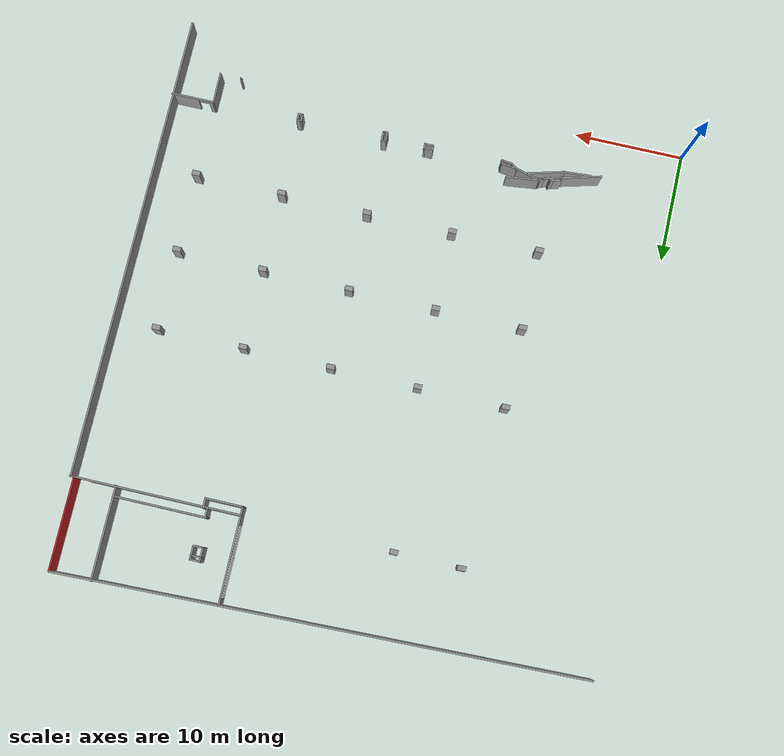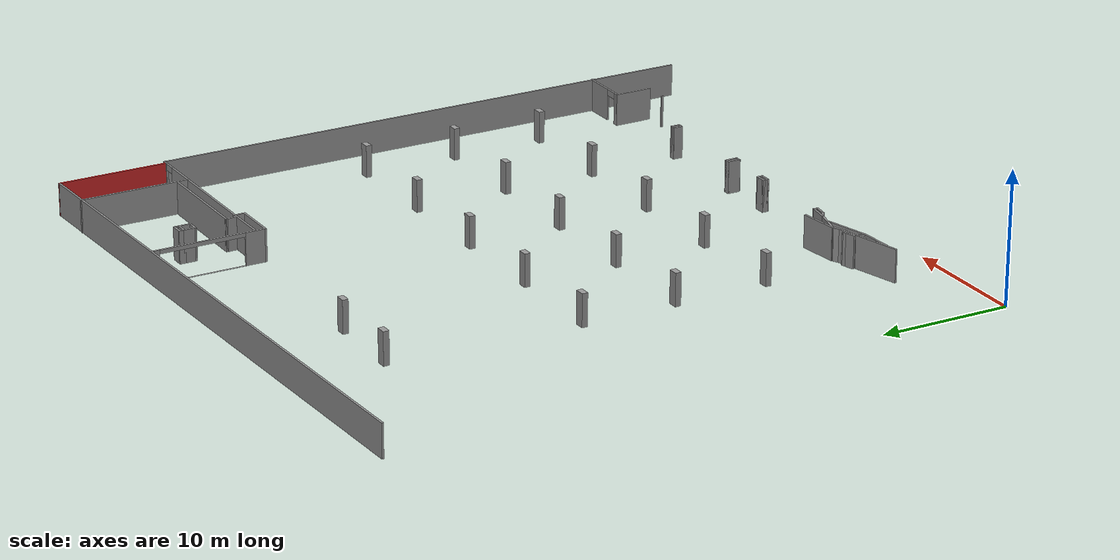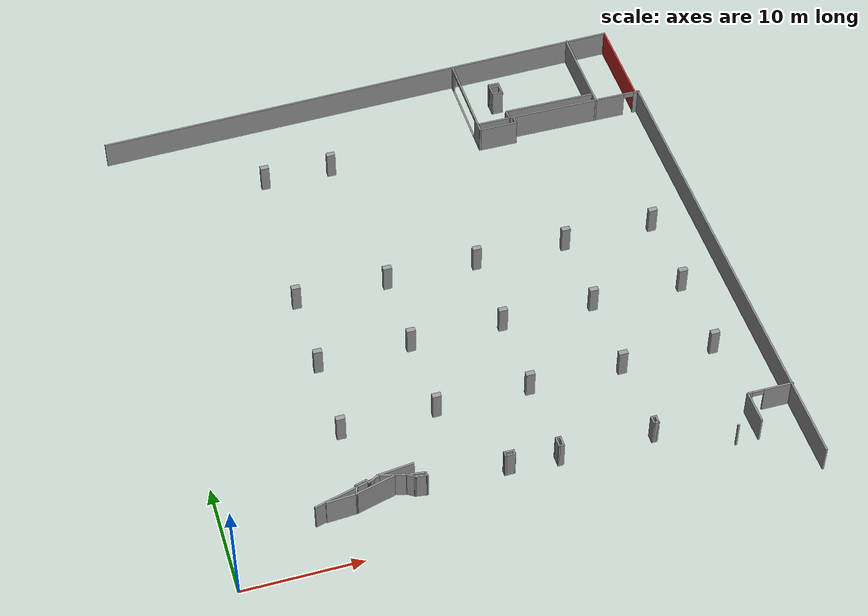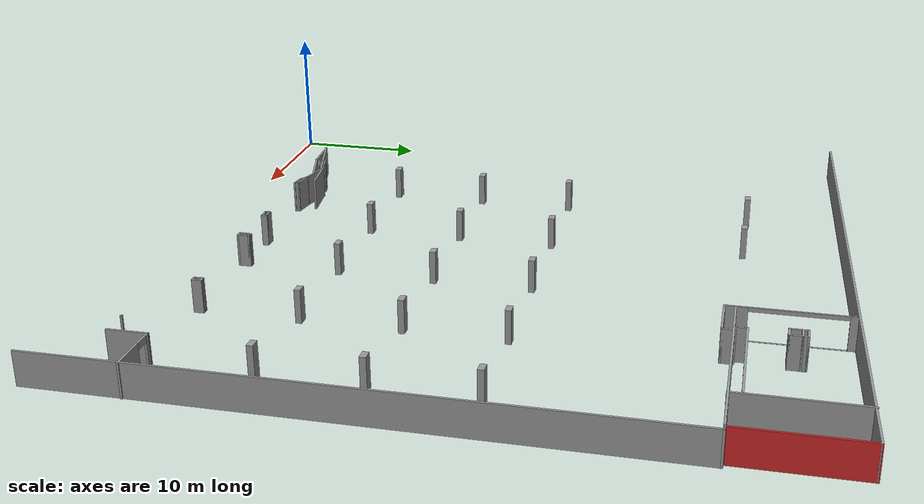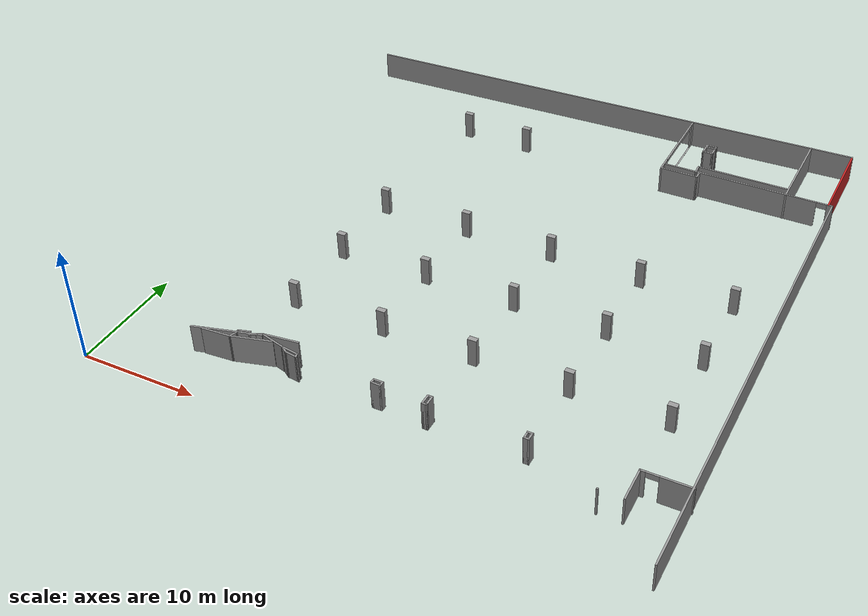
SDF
<sdf version="1.6">
 <model name="car_parking_underground_big_1">
  <pose>-9.36123 -7.37411 0 0 -0 0</pose>
  <link name="Wall_10">
   <collision name="Wall_10_Collision">
    <geometry><box><size>47.7736 0.15 2.5</size></box></geometry>
    <pose>0 0 1.25 0 -0 0</pose>
   </collision>
   <visual name="Wall_10_Visual">
    <pose>0 0 1.25 0 -0 0</pose>
    <geometry><box><size>47.7736 0.15 2.5</size></box></geometry>
    <material>
     <script><uri>file://media/materials/scripts/gazebo.material</uri><name>Gazebo/Grey</name></script>
     <ambient>1 1 1 1</ambient>
    </material>
    <meta><layer>0</layer></meta>
   </visual>
   <pose>32.3321 56.3053 0 0 -0 0.031502</pose>
  </link>
  <link name="Wall_119">
   <pose>54.6311 12.6385 0 0 -0 3.14159</pose>
   <visual name="Wall_119_Visual_0">
    <pose>-0.72715 0 1.25 0 -0 0</pose>
    <geometry><box><size>2.5457 0.15 2.5</size></box></geometry>
    <material>
     <script><uri>file://media/materials/scripts/gazebo.material</uri><name>Gazebo/Grey</name></script>
     <ambient>1 1 1 1</ambient>
    </material>
    <meta><layer>0</layer></meta>
   </visual>
   <collision name="Wall_119_Collision_0">
    <geometry><box><size>2.5457 0.15 2.5</size></box></geometry>
    <pose>-0.72715 0 1.25 0 -0 0</pose>
   </collision>
   <visual name="Wall_119_Visual_1">
    <pose>1.77285 0 1.25 0 -0 0</pose>
    <geometry><box><size>0.4543 0.15 2.5</size></box></geometry>
    <material>
     <script><uri>file://media/materials/scripts/gazebo.material</uri><name>Gazebo/Grey</name></script>
     <ambient>1 1 1 1</ambient>
    </material>
    <meta><layer>0</layer></meta>
   </visual>
   <collision name="Wall_119_Collision_1">
    <geometry><box><size>0.4543 0.15 2.5</size></box></geometry>
    <pose>1.77285 0 1.25 0 -0 0</pose>
   </collision>
   <visual name="Wall_119_Visual_2">
    <pose>1.0457 0 2.25 0 -0 0</pose>
    <geometry><box><size>1 0.15 0.5</size></box></geometry>
    <material>
     <script><uri>file://media/materials/scripts/gazebo.material</uri><name>Gazebo/Grey</name></script>
     <ambient>1 1 1 1</ambient>
    </material>
    <meta><layer>0</layer></meta>
   </visual>
   <collision name="Wall_119_Collision_2">
    <geometry><box><size>1 0.15 0.5</size></box></geometry>
    <pose>1.0457 0 2.25 0 -0 0</pose>
   </collision>
  </link>
  <link name="Wall_12">
   <collision name="Wall_12_Collision">
    <geometry><box><size>8.5 0.15 2.5</size></box></geometry>
    <pose>0 0 1.25 0 -0 0</pose>
   </collision>
   <visual name="Wall_12_Visual">
    <pose>0 0 1.25 0 -0 0</pose>
    <geometry><box><size>8.5 0.15 2.5</size></box></geometry>
    <material>
     <script><uri>file://media/materials/scripts/gazebo.material</uri><name>Gazebo/Red</name></script>
     <ambient>1 1 1 1</ambient>
    </material>
    <meta><layer>0</layer></meta>
   </visual>
   <pose>56.1321 52.8803 0 0 -0 -1.5708</pose>
  </link>
  <link name="Wall_120">
   <collision name="Wall_120_Collision">
    <geometry><box><size>2.9616 0.15 2.5</size></box></geometry>
    <pose>0 0 1.25 0 -0 0</pose>
   </collision>
   <visual name="Wall_120_Visual">
    <pose>0 0 1.25 0 -0 0</pose>
    <geometry><box><size>2.9616 0.15 2.5</size></box></geometry>
    <material>
     <script><uri>file://media/materials/scripts/gazebo.material</uri><name>Gazebo/Grey</name></script>
     <ambient>1 1 1 1</ambient>
    </material>
    <meta><layer>0</layer></meta>
   </visual>
   <pose>52.7061 11.2327 0 0 -0 -1.56139</pose>
  </link>
  <link name="Wall_122">
   <pose>50.3071 48.6746 0 0 -0 3.14159</pose>
   <visual name="Wall_122_Visual_0">
    <pose>-5.96002 0 1.25 0 -0 0</pose>
    <geometry><box><size>0.579961 0.15 2.5</size></box></geometry>
    <material>
     <script><uri>file://media/materials/scripts/gazebo.material</uri><name>Gazebo/Grey</name></script>
     <ambient>1 1 1 1</ambient>
    </material>
    <meta><layer>0</layer></meta>
   </visual>
   <collision name="Wall_122_Collision_0">
    <geometry><box><size>0.579961 0.15 2.5</size></box></geometry>
    <pose>-5.96002 0 1.25 0 -0 0</pose>
   </collision>
   <visual name="Wall_122_Visual_1">
    <pose>0.73998 0 1.25 0 -0 0</pose>
    <geometry><box><size>11.02 0.15 2.5</size></box></geometry>
    <material>
     <script><uri>file://media/materials/scripts/gazebo.material</uri><name>Gazebo/Grey</name></script>
     <ambient>1 1 1 1</ambient>
    </material>
    <meta><layer>0</layer></meta>
   </visual>
   <collision name="Wall_122_Collision_1">
    <geometry><box><size>11.02 0.15 2.5</size></box></geometry>
    <pose>0.73998 0 1.25 0 -0 0</pose>
   </collision>
   <visual name="Wall_122_Visual_2">
    <pose>-5.22004 0 2.25 0 -0 0</pose>
    <geometry><box><size>0.9 0.15 0.5</size></box></geometry>
    <material>
     <script><uri>file://media/materials/scripts/gazebo.material</uri><name>Gazebo/Grey</name></script>
     <ambient>1 1 1 1</ambient>
    </material>
    <meta><layer>0</layer></meta>
   </visual>
   <collision name="Wall_122_Collision_2">
    <geometry><box><size>0.9 0.15 0.5</size></box></geometry>
    <pose>-5.22004 0 2.25 0 -0 0</pose>
   </collision>
  </link>
  <link name="Wall_13">
   <collision name="Wall_13_Collision">
    <geometry><box><size>0.470715 0.15 2.5</size></box></geometry>
    <pose>0 0 1.25 0 -0 0</pose>
   </collision>
   <visual name="Wall_13_Visual">
    <pose>0 0 1.25 0 -0 0</pose>
    <geometry><box><size>0.470715 0.15 2.5</size></box></geometry>
    <material>
     <script><uri>file://media/materials/scripts/gazebo.material</uri><name>Gazebo/Grey</name></script>
     <ambient>1 1 1 1</ambient>
    </material>
    <meta><layer>0</layer></meta>
   </visual>
   <pose>56.2917 48.6899 0 0 -0 -0.096071</pose>
  </link>
  <link name="Wall_14">
   <collision name="Wall_14_Collision">
    <geometry><box><size>43.2195 0.15 2.5</size></box></geometry>
    <pose>0 0 1.25 0 -0 0</pose>
   </collision>
   <visual name="Wall_14_Visual">
    <pose>0 0 1.25 0 -0 0</pose>
    <geometry><box><size>43.2195 0.15 2.5</size></box></geometry>
    <material>
     <script><uri>file://media/materials/scripts/gazebo.material</uri><name>Gazebo/Grey</name></script>
     <ambient>1 1 1 1</ambient>
    </material>
    <meta><layer>0</layer></meta>
   </visual>
   <pose>56.4667 27.1399 0 0 -0 -1.57008</pose>
  </link>
  <link name="Wall_225">
   <collision name="Wall_225_Collision">
    <geometry><box><size>2.58227 0.15 2.5</size></box></geometry>
    <pose>0 0 1.25 0 -0 0</pose>
   </collision>
   <visual name="Wall_225_Visual">
    <pose>0 0 1.25 0 -0 0</pose>
    <geometry><box><size>2.58227 0.15 2.5</size></box></geometry>
    <material>
     <script><uri>file://media/materials/scripts/gazebo.material</uri><name>Gazebo/Grey</name></script>
     <ambient>1 1 1 1</ambient>
    </material>
    <meta><layer>0</layer></meta>
   </visual>
   <pose>18.6857 11.8599 0 0 -0 0.069276</pose>
  </link>
  <link name="Wall_226">
   <collision name="Wall_226_Collision">
    <geometry><box><size>0.710661 0.15 2.5</size></box></geometry>
    <pose>0 0 1.25 0 -0 0</pose>
   </collision>
   <visual name="Wall_226_Visual">
    <pose>0 0 1.25 0 -0 0</pose>
    <geometry><box><size>0.710661 0.15 2.5</size></box></geometry>
    <material>
     <script><uri>file://media/materials/scripts/gazebo.material</uri><name>Gazebo/Grey</name></script>
     <ambient>1 1 1 1</ambient>
    </material>
    <meta><layer>0</layer></meta>
   </visual>
   <pose>19.9897 12.2093 0 0 -0 1.24101</pose>
  </link>
  <link name="Wall_227">
   <collision name="Wall_227_Collision">
    <geometry><box><size>0.25 0.15 2.5</size></box></geometry>
    <pose>0 0 1.25 0 -0 0</pose>
   </collision>
   <visual name="Wall_227_Visual">
    <pose>0 0 1.25 0 -0 0</pose>
    <geometry><box><size>0.25 0.15 2.5</size></box></geometry>
    <material>
     <script><uri>file://media/materials/scripts/gazebo.material</uri><name>Gazebo/Grey</name></script>
     <ambient>1 1 1 1</ambient>
    </material>
    <meta><layer>0</layer></meta>
   </visual>
   <pose>20.0935 12.5228 0 0 -0 1.309</pose>
  </link>
  <link name="Wall_228">
   <collision name="Wall_228_Collision">
    <geometry><box><size>0.25 0.15 2.5</size></box></geometry>
    <pose>0 0 1.25 0 -0 0</pose>
   </collision>
   <visual name="Wall_228_Visual">
    <pose>0 0 1.25 0 -0 0</pose>
    <geometry><box><size>0.25 0.15 2.5</size></box></geometry>
    <material>
     <script><uri>file://media/materials/scripts/gazebo.material</uri><name>Gazebo/Grey</name></script>
     <ambient>1 1 1 1</ambient>
    </material>
    <meta><layer>0</layer></meta>
   </visual>
   <pose>20.0935 12.6194 0 0 -0 1.8326</pose>
  </link>
  <link name="Wall_229">
   <collision name="Wall_229_Collision">
    <geometry><box><size>0.25 0.15 2.5</size></box></geometry>
    <pose>0 0 1.25 0 -0 0</pose>
   </collision>
   <visual name="Wall_229_Visual">
    <pose>0 0 1.25 0 -0 0</pose>
    <geometry><box><size>0.25 0.15 2.5</size></box></geometry>
    <material>
     <script><uri>file://media/materials/scripts/gazebo.material</uri><name>Gazebo/Grey</name></script>
     <ambient>1 1 1 1</ambient>
    </material>
    <meta><layer>0</layer></meta>
   </visual>
   <pose>20.0676 12.716 0 0 -0 1.8326</pose>
  </link>
  <link name="Wall_230">
   <collision name="Wall_230_Collision">
    <geometry><box><size>0.75 0.15 2.5</size></box></geometry>
    <pose>0 0 1.25 0 -0 0</pose>
   </collision>
   <visual name="Wall_230_Visual">
    <pose>0 0 1.25 0 -0 0</pose>
    <geometry><box><size>0.75 0.15 2.5</size></box></geometry>
    <material>
     <script><uri>file://media/materials/scripts/gazebo.material</uri><name>Gazebo/Grey</name></script>
     <ambient>1 1 1 1</ambient>
    </material>
    <meta><layer>0</layer></meta>
   </visual>
   <pose>20.3444 12.842 0 0 -0 0.261799</pose>
  </link>
  <link name="Wall_231">
   <collision name="Wall_231_Collision">
    <geometry><box><size>0.5 0.15 2.5</size></box></geometry>
    <pose>0 0 1.25 0 -0 0</pose>
   </collision>
   <visual name="Wall_231_Visual">
    <pose>0 0 1.25 0 -0 0</pose>
    <geometry><box><size>0.5 0.15 2.5</size></box></geometry>
    <material>
     <script><uri>file://media/materials/scripts/gazebo.material</uri><name>Gazebo/Grey</name></script>
     <ambient>1 1 1 1</ambient>
    </material>
    <meta><layer>0</layer></meta>
   </visual>
   <pose>20.8032 12.9649 0 0 -0 0.261799</pose>
  </link>
  <link name="Wall_232">
   <collision name="Wall_232_Collision">
    <geometry><box><size>0.5 0.15 2.5</size></box></geometry>
    <pose>0 0 1.25 0 -0 0</pose>
   </collision>
   <visual name="Wall_232_Visual">
    <pose>0 0 1.25 0 -0 0</pose>
    <geometry><box><size>0.5 0.15 2.5</size></box></geometry>
    <material>
     <script><uri>file://media/materials/scripts/gazebo.material</uri><name>Gazebo/Grey</name></script>
     <ambient>1 1 1 1</ambient>
    </material>
    <meta><layer>0</layer></meta>
   </visual>
   <pose>21.0598 12.8586 0 0 -0 -1.0472</pose>
  </link>
  <link name="Wall_233">
   <collision name="Wall_233_Collision">
    <geometry><box><size>1.11288 0.15 2.5</size></box></geometry>
    <pose>0 0 1.25 0 -0 0</pose>
   </collision>
   <visual name="Wall_233_Visual">
    <pose>0 0 1.25 0 -0 0</pose>
    <geometry><box><size>1.11288 0.15 2.5</size></box></geometry>
    <material>
     <script><uri>file://media/materials/scripts/gazebo.material</uri><name>Gazebo/Grey</name></script>
     <ambient>1 1 1 1</ambient>
    </material>
    <meta><layer>0</layer></meta>
   </visual>
   <pose>21.5578 12.9586 0 0 -0 0.549683</pose>
  </link>
  <link name="Wall_234">
   <collision name="Wall_234_Collision">
    <geometry><box><size>2.40199 0.15 2.5</size></box></geometry>
    <pose>0 0 1.25 0 -0 0</pose>
   </collision>
   <visual name="Wall_234_Visual">
    <pose>0 0 1.25 0 -0 0</pose>
    <geometry><box><size>2.40199 0.15 2.5</size></box></geometry>
    <material>
     <script><uri>file://media/materials/scripts/gazebo.material</uri><name>Gazebo/Grey</name></script>
     <ambient>1 1 1 1</ambient>
    </material>
    <meta><layer>0</layer></meta>
   </visual>
   <pose>23.0573 12.9238 0 0 -0 -0.257093</pose>
  </link>
  <link name="Wall_235">
   <collision name="Wall_235_Collision">
    <geometry><box><size>1.64004 0.15 2.5</size></box></geometry>
    <pose>0 0 1.25 0 -0 0</pose>
   </collision>
   <visual name="Wall_235_Visual">
    <pose>0 0 1.25 0 -0 0</pose>
    <geometry><box><size>1.64004 0.15 2.5</size></box></geometry>
    <material>
     <script><uri>file://media/materials/scripts/gazebo.material</uri><name>Gazebo/Grey</name></script>
     <ambient>1 1 1 1</ambient>
    </material>
    <meta><layer>0</layer></meta>
   </visual>
   <pose>24.8831 12.5269 0 0 -0 -0.149037</pose>
  </link>
  <link name="Wall_236">
   <collision name="Wall_236_Collision">
    <geometry><box><size>0.44205 0.15 2.5</size></box></geometry>
    <pose>0 0 1.25 0 -0 0</pose>
   </collision>
   <visual name="Wall_236_Visual">
    <pose>0 0 1.25 0 -0 0</pose>
    <geometry><box><size>0.44205 0.15 2.5</size></box></geometry>
    <material>
     <script><uri>file://media/materials/scripts/gazebo.material</uri><name>Gazebo/Grey</name></script>
     <ambient>1 1 1 1</ambient>
    </material>
    <meta><layer>0</layer></meta>
   </visual>
   <pose>25.6247 12.2724 0 0 -0 -1.39874</pose>
  </link>
  <link name="Wall_237">
   <collision name="Wall_237_Collision">
    <geometry><box><size>1.12043 0.15 2.5</size></box></geometry>
    <pose>0 0 1.25 0 -0 0</pose>
   </collision>
   <visual name="Wall_237_Visual">
    <pose>0 0 1.25 0 -0 0</pose>
    <geometry><box><size>1.12043 0.15 2.5</size></box></geometry>
    <material>
     <script><uri>file://media/materials/scripts/gazebo.material</uri><name>Gazebo/Grey</name></script>
     <ambient>1 1 1 1</ambient>
    </material>
    <meta><layer>0</layer></meta>
   </visual>
   <pose>25.189 12.1938 0 0 -0 3.00654</pose>
  </link>
  <link name="Wall_238">
   <collision name="Wall_238_Collision">
    <geometry><box><size>0.827415 0.15 2.5</size></box></geometry>
    <pose>0 0 1.25 0 -0 0</pose>
   </collision>
   <visual name="Wall_238_Visual">
    <pose>0 0 1.25 0 -0 0</pose>
    <geometry><box><size>0.827415 0.15 2.5</size></box></geometry>
    <material>
     <script><uri>file://media/materials/scripts/gazebo.material</uri><name>Gazebo/Grey</name></script>
     <ambient>1 1 1 1</ambient>
    </material>
    <meta><layer>0</layer></meta>
   </visual>
   <pose>24.4675 12.4282 0 0 -0 2.54904</pose>
  </link>
  <link name="Wall_280">
   <collision name="Wall_280_Collision">
    <geometry><box><size>0.865 0.15 2.5</size></box></geometry>
    <pose>0 0 1.25 0 -0 0</pose>
   </collision>
   <visual name="Wall_280_Visual">
    <pose>0 0 1.25 0 -0 0</pose>
    <geometry><box><size>0.865 0.15 2.5</size></box></geometry>
    <material>
     <script><uri>file://media/materials/scripts/gazebo.material</uri><name>Gazebo/Grey</name></script>
     <ambient>1 1 1 1</ambient>
    </material>
    <meta><layer>0</layer></meta>
   </visual>
   <pose>32.4625 12.5347 0 0 -0 0</pose>
  </link>
  <link name="Wall_281">
   <collision name="Wall_281_Collision">
    <geometry><box><size>0.5 0.15 2.5</size></box></geometry>
    <pose>0 0 1.25 0 -0 0</pose>
   </collision>
   <visual name="Wall_281_Visual">
    <pose>0 0 1.25 0 -0 0</pose>
    <geometry><box><size>0.5 0.15 2.5</size></box></geometry>
    <material>
     <script><uri>file://media/materials/scripts/gazebo.material</uri><name>Gazebo/Grey</name></script>
     <ambient>1 1 1 1</ambient>
    </material>
    <meta><layer>0</layer></meta>
   </visual>
   <pose>32.843 12.3597 0 0 -0 -1.5708</pose>
  </link>
  <link name="Wall_282">
   <collision name="Wall_282_Collision">
    <geometry><box><size>0.865 0.15 2.5</size></box></geometry>
    <pose>0 0 1.25 0 -0 0</pose>
   </collision>
   <visual name="Wall_282_Visual">
    <pose>0 0 1.25 0 -0 0</pose>
    <geometry><box><size>0.865 0.15 2.5</size></box></geometry>
    <material>
     <script><uri>file://media/materials/scripts/gazebo.material</uri><name>Gazebo/Grey</name></script>
     <ambient>1 1 1 1</ambient>
    </material>
    <meta><layer>0</layer></meta>
   </visual>
   <pose>32.4625 12.1847 0 0 -0 3.14159</pose>
  </link>
  <link name="Wall_283">
   <collision name="Wall_283_Collision">
    <geometry><box><size>0.5 0.15 2.5</size></box></geometry>
    <pose>0 0 1.25 0 -0 0</pose>
   </collision>
   <visual name="Wall_283_Visual">
    <pose>0 0 1.25 0 -0 0</pose>
    <geometry><box><size>0.5 0.15 2.5</size></box></geometry>
    <material>
     <script><uri>file://media/materials/scripts/gazebo.material</uri><name>Gazebo/Grey</name></script>
     <ambient>1 1 1 1</ambient>
    </material>
    <meta><layer>0</layer></meta>
   </visual>
   <pose>32.105 12.3597 0 0 -0 1.5708</pose>
  </link>
  <link name="Wall_290">
   <collision name="Wall_290_Collision">
    <geometry><box><size>0.5 0.15 2.5</size></box></geometry>
    <pose>0 0 1.25 0 -0 0</pose>
   </collision>
   <visual name="Wall_290_Visual">
    <pose>0 0 1.25 0 -0 0</pose>
    <geometry><box><size>0.5 0.15 2.5</size></box></geometry>
    <material>
     <script><uri>file://media/materials/scripts/gazebo.material</uri><name>Gazebo/Grey</name></script>
     <ambient>1 1 1 1</ambient>
    </material>
    <meta><layer>0</layer></meta>
   </visual>
   <pose>36.6277 12.7413 0 0 -0 0</pose>
  </link>
  <link name="Wall_291">
   <collision name="Wall_291_Collision">
    <geometry><box><size>1 0.15 2.5</size></box></geometry>
    <pose>0 0 1.25 0 -0 0</pose>
   </collision>
   <visual name="Wall_291_Visual">
    <pose>0 0 1.25 0 -0 0</pose>
    <geometry><box><size>1 0.15 2.5</size></box></geometry>
    <material>
     <script><uri>file://media/materials/scripts/gazebo.material</uri><name>Gazebo/Grey</name></script>
     <ambient>1 1 1 1</ambient>
    </material>
    <meta><layer>0</layer></meta>
   </visual>
   <pose>36.8027 12.3163 0 0 -0 -1.5708</pose>
  </link>
  <link name="Wall_292">
   <collision name="Wall_292_Collision">
    <geometry><box><size>0.5 0.15 2.5</size></box></geometry>
    <pose>0 0 1.25 0 -0 0</pose>
   </collision>
   <visual name="Wall_292_Visual">
    <pose>0 0 1.25 0 -0 0</pose>
    <geometry><box><size>0.5 0.15 2.5</size></box></geometry>
    <material>
     <script><uri>file://media/materials/scripts/gazebo.material</uri><name>Gazebo/Grey</name></script>
     <ambient>1 1 1 1</ambient>
    </material>
    <meta><layer>0</layer></meta>
   </visual>
   <pose>36.6277 11.8913 0 0 -0 3.14159</pose>
  </link>
  <link name="Wall_293">
   <collision name="Wall_293_Collision">
    <geometry><box><size>1 0.15 2.5</size></box></geometry>
    <pose>0 0 1.25 0 -0 0</pose>
   </collision>
   <visual name="Wall_293_Visual">
    <pose>0 0 1.25 0 -0 0</pose>
    <geometry><box><size>1 0.15 2.5</size></box></geometry>
    <material>
     <script><uri>file://media/materials/scripts/gazebo.material</uri><name>Gazebo/Grey</name></script>
     <ambient>1 1 1 1</ambient>
    </material>
    <meta><layer>0</layer></meta>
   </visual>
   <pose>36.4527 12.3163 0 0 -0 1.5708</pose>
  </link>
  <link name="Wall_300">
   <collision name="Wall_300_Collision">
    <geometry><box><size>0.48251 0.15 2.5</size></box></geometry>
    <pose>0 0 1.25 0 -0 0</pose>
   </collision>
   <visual name="Wall_300_Visual">
    <pose>0 0 1.25 0 -0 0</pose>
    <geometry><box><size>0.48251 0.15 2.5</size></box></geometry>
    <material>
     <script><uri>file://media/materials/scripts/gazebo.material</uri><name>Gazebo/Grey</name></script>
     <ambient>1 1 1 1</ambient>
    </material>
    <meta><layer>0</layer></meta>
   </visual>
   <pose>44.5888 12.5688 0 0 -0 0</pose>
  </link>
  <link name="Wall_301">
   <collision name="Wall_301_Collision">
    <geometry><box><size>0.75 0.15 2.5</size></box></geometry>
    <pose>0 0 1.25 0 -0 0</pose>
   </collision>
   <visual name="Wall_301_Visual">
    <pose>0 0 1.25 0 -0 0</pose>
    <geometry><box><size>0.75 0.15 2.5</size></box></geometry>
    <material>
     <script><uri>file://media/materials/scripts/gazebo.material</uri><name>Gazebo/Grey</name></script>
     <ambient>1 1 1 1</ambient>
    </material>
    <meta><layer>0</layer></meta>
   </visual>
   <pose>44.7725 12.2688 0 0 -0 -1.5708</pose>
  </link>
  <link name="Wall_302">
   <collision name="Wall_302_Collision">
    <geometry><box><size>0.48251 0.15 2.5</size></box></geometry>
    <pose>0 0 1.25 0 -0 0</pose>
   </collision>
   <visual name="Wall_302_Visual">
    <pose>0 0 1.25 0 -0 0</pose>
    <geometry><box><size>0.48251 0.15 2.5</size></box></geometry>
    <material>
     <script><uri>file://media/materials/scripts/gazebo.material</uri><name>Gazebo/Grey</name></script>
     <ambient>1 1 1 1</ambient>
    </material>
    <meta><layer>0</layer></meta>
   </visual>
   <pose>44.5888 11.9688 0 0 -0 -3.14159</pose>
  </link>
  <link name="Wall_303">
   <collision name="Wall_303_Collision">
    <geometry><box><size>0.75 0.15 2.5</size></box></geometry>
    <pose>0 0 1.25 0 -0 0</pose>
   </collision>
   <visual name="Wall_303_Visual">
    <pose>0 0 1.25 0 -0 0</pose>
    <geometry><box><size>0.75 0.15 2.5</size></box></geometry>
    <material>
     <script><uri>file://media/materials/scripts/gazebo.material</uri><name>Gazebo/Grey</name></script>
     <ambient>1 1 1 1</ambient>
    </material>
    <meta><layer>0</layer></meta>
   </visual>
   <pose>44.4225 12.2688 0 0 -0 1.5708</pose>
  </link>
  <link name="Wall_31">
   <collision name="Wall_31_Collision">
    <geometry><box><size>3.13406 0.15 2.5</size></box></geometry>
    <pose>0 0 1.25 0 -0 0</pose>
   </collision>
   <visual name="Wall_31_Visual">
    <pose>0 0 1.25 0 -0 0</pose>
    <geometry><box><size>3.13406 0.15 2.5</size></box></geometry>
    <material>
     <script><uri>file://media/materials/scripts/gazebo.material</uri><name>Gazebo/Grey</name></script>
     <ambient>1 1 1 1</ambient>
    </material>
    <meta><layer>0</layer></meta>
   </visual>
   <pose>23.4496 13.3891 0 0 -0 -3.02137</pose>
  </link>
  <link name="Wall_313">
   <collision name="Wall_313_Collision">
    <geometry><box><size>0.75 0.45 2.5</size></box></geometry>
    <pose>0 0 1.25 0 -0 0</pose>
   </collision>
   <visual name="Wall_313_Visual">
    <pose>0 0 1.25 0 -0 0</pose>
    <geometry><box><size>0.75 0.45 2.5</size></box></geometry>
    <material>
     <script><uri>file://media/materials/scripts/gazebo.material</uri><name>Gazebo/Grey</name></script>
     <ambient>1 1 1 1</ambient>
    </material>
    <meta><layer>0</layer></meta>
   </visual>
   <pose>52.5538 19.541 0 0 -0 3.14159</pose>
  </link>
  <link name="Wall_318">
   <collision name="Wall_318_Collision">
    <geometry><box><size>0.75 0.45 2.5</size></box></geometry>
    <pose>0 0 1.25 0 -0 0</pose>
   </collision>
   <visual name="Wall_318_Visual">
    <pose>0 0 1.25 0 -0 0</pose>
    <geometry><box><size>0.75 0.45 2.5</size></box></geometry>
    <material>
     <script><uri>file://media/materials/scripts/gazebo.material</uri><name>Gazebo/Grey</name></script>
     <ambient>1 1 1 1</ambient>
    </material>
    <meta><layer>0</layer></meta>
   </visual>
   <pose>52.5108 26.8208 0 0 -0 3.14159</pose>
  </link>
  <link name="Wall_32">
   <collision name="Wall_32_Collision">
    <geometry><box><size>5.75 0.15 2.5</size></box></geometry>
    <pose>0 0 1.25 0 -0 0</pose>
   </collision>
   <visual name="Wall_32_Visual">
    <pose>0 0 1.25 0 -0 0</pose>
    <geometry><box><size>5.75 0.15 2.5</size></box></geometry>
    <material>
     <script><uri>file://media/materials/scripts/gazebo.material</uri><name>Gazebo/Grey</name></script>
     <ambient>1 1 1 1</ambient>
    </material>
    <meta><layer>0</layer></meta>
   </visual>
   <pose>19.2637 12.3439 0 0 -0 -2.87979</pose>
  </link>
  <link name="Wall_321">
   <collision name="Wall_321_Collision">
    <geometry><box><size>0.75 0.45 2.5</size></box></geometry>
    <pose>0 0 1.25 0 -0 0</pose>
   </collision>
   <visual name="Wall_321_Visual">
    <pose>0 0 1.25 0 -0 0</pose>
    <geometry><box><size>0.75 0.45 2.5</size></box></geometry>
    <material>
     <script><uri>file://media/materials/scripts/gazebo.material</uri><name>Gazebo/Grey</name></script>
     <ambient>1 1 1 1</ambient>
    </material>
    <meta><layer>0</layer></meta>
   </visual>
   <pose>52.5087 34.1862 0 0 -0 0</pose>
  </link>
  <link name="Wall_327">
   <collision name="Wall_327_Collision">
    <geometry><box><size>0.75 0.45 2.5</size></box></geometry>
    <pose>0 0 1.25 0 -0 0</pose>
   </collision>
   <visual name="Wall_327_Visual">
    <pose>0 0 1.25 0 -0 0</pose>
    <geometry><box><size>0.75 0.45 2.5</size></box></geometry>
    <material>
     <script><uri>file://media/materials/scripts/gazebo.material</uri><name>Gazebo/Grey</name></script>
     <ambient>1 1 1 1</ambient>
    </material>
    <meta><layer>0</layer></meta>
   </visual>
   <pose>44.5437 19.5939 0 0 -0 0</pose>
  </link>
  <link name="Wall_332">
   <collision name="Wall_332_Collision">
    <geometry><box><size>0.75 0.45 2.5</size></box></geometry>
    <pose>0 0 1.25 0 -0 0</pose>
   </collision>
   <visual name="Wall_332_Visual">
    <pose>0 0 1.25 0 -0 0</pose>
    <geometry><box><size>0.75 0.45 2.5</size></box></geometry>
    <material>
     <script><uri>file://media/materials/scripts/gazebo.material</uri><name>Gazebo/Grey</name></script>
     <ambient>1 1 1 1</ambient>
    </material>
    <meta><layer>0</layer></meta>
   </visual>
   <pose>36.5671 19.6581 0 0 -0 0</pose>
  </link>
  <link name="Wall_337">
   <collision name="Wall_337_Collision">
    <geometry><box><size>0.75 0.45 2.5</size></box></geometry>
    <pose>0 0 1.25 0 -0 0</pose>
   </collision>
   <visual name="Wall_337_Visual">
    <pose>0 0 1.25 0 -0 0</pose>
    <geometry><box><size>0.75 0.45 2.5</size></box></geometry>
    <material>
     <script><uri>file://media/materials/scripts/gazebo.material</uri><name>Gazebo/Grey</name></script>
     <ambient>1 1 1 1</ambient>
    </material>
    <meta><layer>0</layer></meta>
   </visual>
   <pose>36.5553 26.887 0 0 -0 0</pose>
  </link>
  <link name="Wall_342">
   <collision name="Wall_342_Collision">
    <geometry><box><size>0.75 0.45 2.5</size></box></geometry>
    <pose>0 0 1.25 0 -0 0</pose>
   </collision>
   <visual name="Wall_342_Visual">
    <pose>0 0 1.25 0 -0 0</pose>
    <geometry><box><size>0.75 0.45 2.5</size></box></geometry>
    <material>
     <script><uri>file://media/materials/scripts/gazebo.material</uri><name>Gazebo/Grey</name></script>
     <ambient>1 1 1 1</ambient>
    </material>
    <meta><layer>0</layer></meta>
   </visual>
   <pose>44.5437 26.8691 0 0 -0 0</pose>
  </link>
  <link name="Wall_351">
   <collision name="Wall_351_Collision">
    <geometry><box><size>0.75 0.45 2.5</size></box></geometry>
    <pose>0 0 1.25 0 -0 0</pose>
   </collision>
   <visual name="Wall_351_Visual">
    <pose>0 0 1.25 0 -0 0</pose>
    <geometry><box><size>0.75 0.45 2.5</size></box></geometry>
    <material>
     <script><uri>file://media/materials/scripts/gazebo.material</uri><name>Gazebo/Grey</name></script>
     <ambient>1 1 1 1</ambient>
    </material>
    <meta><layer>0</layer></meta>
   </visual>
   <pose>36.5306 34.1781 0 0 -0 0</pose>
  </link>
  <link name="Wall_356">
   <collision name="Wall_356_Collision">
    <geometry><box><size>0.75 0.45 2.5</size></box></geometry>
    <pose>0 0 1.25 0 -0 0</pose>
   </collision>
   <visual name="Wall_356_Visual">
    <pose>0 0 1.25 0 -0 0</pose>
    <geometry><box><size>0.75 0.45 2.5</size></box></geometry>
    <material>
     <script><uri>file://media/materials/scripts/gazebo.material</uri><name>Gazebo/Grey</name></script>
     <ambient>1 1 1 1</ambient>
    </material>
    <meta><layer>0</layer></meta>
   </visual>
   <pose>44.5337 34.1601 0 0 -0 0</pose>
  </link>
  <link name="Wall_361">
   <collision name="Wall_361_Collision">
    <geometry><box><size>0.75 0.45 2.5</size></box></geometry>
    <pose>0 0 1.25 0 -0 0</pose>
   </collision>
   <visual name="Wall_361_Visual">
    <pose>0 0 1.25 0 -0 0</pose>
    <geometry><box><size>0.75 0.45 2.5</size></box></geometry>
    <material>
     <script><uri>file://media/materials/scripts/gazebo.material</uri><name>Gazebo/Grey</name></script>
     <ambient>1 1 1 1</ambient>
    </material>
    <meta><layer>0</layer></meta>
   </visual>
   <pose>20.6157 34.2141 0 0 -0 0</pose>
  </link>
  <link name="Wall_366">
   <collision name="Wall_366_Collision">
    <geometry><box><size>0.75 0.45 2.5</size></box></geometry>
    <pose>0 0 1.25 0 -0 0</pose>
   </collision>
   <visual name="Wall_366_Visual">
    <pose>0 0 1.25 0 -0 0</pose>
    <geometry><box><size>0.75 0.45 2.5</size></box></geometry>
    <material>
     <script><uri>file://media/materials/scripts/gazebo.material</uri><name>Gazebo/Grey</name></script>
     <ambient>1 1 1 1</ambient>
    </material>
    <meta><layer>0</layer></meta>
   </visual>
   <pose>28.5785 34.1773 0 0 -0 0</pose>
  </link>
  <link name="Wall_371">
   <collision name="Wall_371_Collision">
    <geometry><box><size>0.75 0.45 2.5</size></box></geometry>
    <pose>0 0 1.25 0 -0 0</pose>
   </collision>
   <visual name="Wall_371_Visual">
    <pose>0 0 1.25 0 -0 0</pose>
    <geometry><box><size>0.75 0.45 2.5</size></box></geometry>
    <material>
     <script><uri>file://media/materials/scripts/gazebo.material</uri><name>Gazebo/Grey</name></script>
     <ambient>1 1 1 1</ambient>
    </material>
    <meta><layer>0</layer></meta>
   </visual>
   <pose>20.6137 26.8851 0 0 -0 0</pose>
  </link>
  <link name="Wall_376">
   <collision name="Wall_376_Collision">
    <geometry><box><size>0.75 0.45 2.5</size></box></geometry>
    <pose>0 0 1.25 0 -0 0</pose>
   </collision>
   <visual name="Wall_376_Visual">
    <pose>0 0 1.25 0 -0 0</pose>
    <geometry><box><size>0.75 0.45 2.5</size></box></geometry>
    <material>
     <script><uri>file://media/materials/scripts/gazebo.material</uri><name>Gazebo/Grey</name></script>
     <ambient>1 1 1 1</ambient>
    </material>
    <meta><layer>0</layer></meta>
   </visual>
   <pose>28.5674 26.8973 0 0 -0 0</pose>
  </link>
  <link name="Wall_381">
   <collision name="Wall_381_Collision">
    <geometry><box><size>0.75 0.45 2.5</size></box></geometry>
    <pose>0 0 1.25 0 -0 0</pose>
   </collision>
   <visual name="Wall_381_Visual">
    <pose>0 0 1.25 0 -0 0</pose>
    <geometry><box><size>0.75 0.45 2.5</size></box></geometry>
    <material>
     <script><uri>file://media/materials/scripts/gazebo.material</uri><name>Gazebo/Grey</name></script>
     <ambient>1 1 1 1</ambient>
    </material>
    <meta><layer>0</layer></meta>
   </visual>
   <pose>20.6156 19.5968 0 0 -0 0</pose>
  </link>
  <link name="Wall_386">
   <collision name="Wall_386_Collision">
    <geometry><box><size>0.75 0.45 2.5</size></box></geometry>
    <pose>0 0 1.25 0 -0 0</pose>
   </collision>
   <visual name="Wall_386_Visual">
    <pose>0 0 1.25 0 -0 0</pose>
    <geometry><box><size>0.75 0.45 2.5</size></box></geometry>
    <material>
     <script><uri>file://media/materials/scripts/gazebo.material</uri><name>Gazebo/Grey</name></script>
     <ambient>1 1 1 1</ambient>
    </material>
    <meta><layer>0</layer></meta>
   </visual>
   <pose>28.6343 19.6311 0 0 -0 0</pose>
  </link>
  <link name="Wall_470">
   <collision name="Wall_470_Collision">
    <geometry><box><size>0.15 0.15 2.5</size></box></geometry>
    <pose>0 0 1.25 0 -0 0</pose>
   </collision>
   <visual name="Wall_470_Visual">
    <pose>0 0 1.25 0 -0 0</pose>
    <geometry><box><size>0.15 0.15 2.5</size></box></geometry>
    <material>
     <script><uri>file://media/materials/scripts/gazebo.material</uri><name>Gazebo/Grey</name></script>
     <ambient>1 1 1 1</ambient>
    </material>
    <meta><layer>0</layer></meta>
   </visual>
   <pose>50.7693 9.82691 0 0 -0 0</pose>
  </link>
  <link name="Wall_504">
   <collision name="Wall_504_Collision">
    <geometry><box><size>8.5 0.15 2.5</size></box></geometry>
    <pose>0 0 1.25 0 -0 0</pose>
   </collision>
   <visual name="Wall_504_Visual">
    <pose>0 0 1.25 0 -0 0</pose>
    <geometry><box><size>8.5 0.15 2.5</size></box></geometry>
    <material>
     <script><uri>file://media/materials/scripts/gazebo.material</uri><name>Gazebo/Grey</name></script>
     <ambient>1 1 1 1</ambient>
    </material>
    <meta><layer>0</layer></meta>
   </visual>
   <pose>52.3668 52.8201 0 0 -0 -1.5708</pose>
  </link>
  <link name="Wall_510">
   <collision name="Wall_510_Collision">
    <geometry><box><size>1 0.15 2.5</size></box></geometry>
    <pose>0 0 1.25 0 -0 0</pose>
   </collision>
   <visual name="Wall_510_Visual">
    <pose>0 0 1.25 0 -0 0</pose>
    <geometry><box><size>1 0.15 2.5</size></box></geometry>
    <material>
     <script><uri>file://media/materials/scripts/gazebo.material</uri><name>Gazebo/Grey</name></script>
     <ambient>1 1 1 1</ambient>
    </material>
    <meta><layer>0</layer></meta>
   </visual>
   <pose>44.0736 52.9761 0 0 -0 3.14159</pose>
  </link>
  <link name="Wall_511">
   <collision name="Wall_511_Collision">
    <geometry><box><size>0.5 0.15 2.5</size></box></geometry>
    <pose>0 0 1.25 0 -0 0</pose>
   </collision>
   <visual name="Wall_511_Visual">
    <pose>0 0 1.25 0 -0 0</pose>
    <geometry><box><size>0.5 0.15 2.5</size></box></geometry>
    <material>
     <script><uri>file://media/materials/scripts/gazebo.material</uri><name>Gazebo/Grey</name></script>
     <ambient>1 1 1 1</ambient>
    </material>
    <meta><layer>0</layer></meta>
   </visual>
   <pose>43.6486 53.1511 0 0 -0 1.5708</pose>
  </link>
  <link name="Wall_512">
   <collision name="Wall_512_Collision">
    <geometry><box><size>1 0.15 2.5</size></box></geometry>
    <pose>0 0 1.25 0 -0 0</pose>
   </collision>
   <visual name="Wall_512_Visual">
    <pose>0 0 1.25 0 -0 0</pose>
    <geometry><box><size>1 0.15 2.5</size></box></geometry>
    <material>
     <script><uri>file://media/materials/scripts/gazebo.material</uri><name>Gazebo/Grey</name></script>
     <ambient>1 1 1 1</ambient>
    </material>
    <meta><layer>0</layer></meta>
   </visual>
   <pose>44.0736 53.3261 0 0 -0 0</pose>
  </link>
  <link name="Wall_513">
   <collision name="Wall_513_Collision">
    <geometry><box><size>0.5 0.15 2.5</size></box></geometry>
    <pose>0 0 1.25 0 -0 0</pose>
   </collision>
   <visual name="Wall_513_Visual">
    <pose>0 0 1.25 0 -0 0</pose>
    <geometry><box><size>0.5 0.15 2.5</size></box></geometry>
    <material>
     <script><uri>file://media/materials/scripts/gazebo.material</uri><name>Gazebo/Grey</name></script>
     <ambient>1 1 1 1</ambient>
    </material>
    <meta><layer>0</layer></meta>
   </visual>
   <pose>44.4986 53.1511 0 0 -0 -1.5708</pose>
  </link>
  <link name="Wall_515">
   <collision name="Wall_515_Collision">
    <geometry><box><size>1 0.15 2.5</size></box></geometry>
    <pose>0 0 1.25 0 -0 0</pose>
   </collision>
   <visual name="Wall_515_Visual">
    <pose>0 0 1.25 0 -0 0</pose>
    <geometry><box><size>1 0.15 2.5</size></box></geometry>
    <material>
     <script><uri>file://media/materials/scripts/gazebo.material</uri><name>Gazebo/Grey</name></script>
     <ambient>1 1 1 1</ambient>
    </material>
    <meta><layer>0</layer></meta>
   </visual>
   <pose>43.6486 52.5511 0 0 -0 -1.5708</pose>
  </link>
  <link name="Wall_516">
   <collision name="Wall_516_Collision">
    <geometry><box><size>1 0.15 2.5</size></box></geometry>
    <pose>0 0 1.25 0 -0 0</pose>
   </collision>
   <visual name="Wall_516_Visual">
    <pose>0 0 1.25 0 -0 0</pose>
    <geometry><box><size>1 0.15 2.5</size></box></geometry>
    <material>
     <script><uri>file://media/materials/scripts/gazebo.material</uri><name>Gazebo/Grey</name></script>
     <ambient>1 1 1 1</ambient>
    </material>
    <meta><layer>0</layer></meta>
   </visual>
   <pose>44.0736 52.1261 0 0 -0 0</pose>
  </link>
  <link name="Wall_517">
   <collision name="Wall_517_Collision">
    <geometry><box><size>1 0.15 2.5</size></box></geometry>
    <pose>0 0 1.25 0 -0 0</pose>
   </collision>
   <visual name="Wall_517_Visual">
    <pose>0 0 1.25 0 -0 0</pose>
    <geometry><box><size>1 0.15 2.5</size></box></geometry>
    <material>
     <script><uri>file://media/materials/scripts/gazebo.material</uri><name>Gazebo/Grey</name></script>
     <ambient>1 1 1 1</ambient>
    </material>
    <meta><layer>0</layer></meta>
   </visual>
   <pose>44.4986 52.5511 0 0 -0 1.5708</pose>
  </link>
  <link name="Wall_519">
   <collision name="Wall_519_Collision">
    <geometry><box><size>1.00661 0.15 2.5</size></box></geometry>
    <pose>0 0 1.25 0 -0 0</pose>
   </collision>
   <visual name="Wall_519_Visual">
    <pose>0 0 1.25 0 -0 0</pose>
    <geometry><box><size>1.00661 0.15 2.5</size></box></geometry>
    <material>
     <script><uri>file://media/materials/scripts/gazebo.material</uri><name>Gazebo/Grey</name></script>
     <ambient>1 1 1 1</ambient>
    </material>
    <meta><layer>0</layer></meta>
   </visual>
   <pose>44.1154 49.1025 0 0 -0 -1.5318</pose>
  </link>
  <link name="Wall_520">
   <collision name="Wall_520_Collision">
    <geometry><box><size>0.16 0.15 2.5</size></box></geometry>
    <pose>0 0 1.25 0 -0 0</pose>
   </collision>
   <visual name="Wall_520_Visual">
    <pose>0 0 1.25 0 -0 0</pose>
    <geometry><box><size>0.16 0.15 2.5</size></box></geometry>
    <material>
     <script><uri>file://media/materials/scripts/gazebo.material</uri><name>Gazebo/Grey</name></script>
     <ambient>1 1 1 1</ambient>
    </material>
    <meta><layer>0</layer></meta>
   </visual>
   <pose>44.1371 48.6746 0 0 -0 0</pose>
  </link>
  <link name="Wall_522">
   <collision name="Wall_522_Collision">
    <geometry><box><size>8.25 0.15 2.5</size></box></geometry>
    <pose>0 0 1.25 0 -0 0</pose>
   </collision>
   <visual name="Wall_522_Visual">
    <pose>0 0 1.25 0 -0 0</pose>
    <geometry><box><size>8.25 0.15 2.5</size></box></geometry>
    <material>
     <script><uri>file://media/materials/scripts/gazebo.material</uri><name>Gazebo/Grey</name></script>
     <ambient>1 1 1 1</ambient>
    </material>
    <meta><layer>0</layer></meta>
   </visual>
   <pose>48.1487 49.5305 0 0 -0 0</pose>
  </link>
  <link name="Wall_595">
   <collision name="Wall_595_Collision">
    <geometry><box><size>3.5 0.15 2.5</size></box></geometry>
    <pose>0 0 1.25 0 -0 0</pose>
   </collision>
   <visual name="Wall_595_Visual">
    <pose>0 0 1.25 0 -0 0</pose>
    <geometry><box><size>3.5 0.15 2.5</size></box></geometry>
    <material>
     <script><uri>file://media/materials/scripts/gazebo.material</uri><name>Gazebo/Grey</name></script>
     <ambient>1 1 1 1</ambient>
    </material>
    <meta><layer>0</layer></meta>
   </visual>
   <pose>21.5169 12.3776 0 0 -0 -2.87979</pose>
  </link>
  <link name="Wall_762">
   <collision name="Wall_762_Collision">
    <geometry><box><size>0.75 0.45 2.5</size></box></geometry>
    <pose>0 0 1.25 0 -0 0</pose>
   </collision>
   <visual name="Wall_762_Visual">
    <pose>0 0 1.25 0 -0 0</pose>
    <geometry><box><size>0.75 0.45 2.5</size></box></geometry>
    <material>
     <script><uri>file://media/materials/scripts/gazebo.material</uri><name>Gazebo/Grey</name></script>
     <ambient>1 1 1 1</ambient>
    </material>
    <meta><layer>0</layer></meta>
   </visual>
   <pose>21.4264 48.8021 0 0 -0 3.14159</pose>
  </link>
  <link name="Wall_764">
   <collision name="Wall_764_Collision">
    <geometry><box><size>0.75 0.45 2.5</size></box></geometry>
    <pose>0 0 1.25 0 -0 0</pose>
   </collision>
   <visual name="Wall_764_Visual">
    <pose>0 0 1.25 0 -0 0</pose>
    <geometry><box><size>0.75 0.45 2.5</size></box></geometry>
    <material>
     <script><uri>file://media/materials/scripts/gazebo.material</uri><name>Gazebo/Grey</name></script>
     <ambient>1 1 1 1</ambient>
    </material>
    <meta><layer>0</layer></meta>
   </visual>
   <pose>27.443 48.7608 0 0 -0 3.14159</pose>
  </link>
  <link name="Wall_766">
   <pose>41.1324 52.2188 0 0 -0 1.5708</pose>
   <visual name="Wall_766_Visual_0">
    <pose>-3.55573 0 1.25 0 -0 0</pose>
    <geometry><box><size>1.63855 0.15 2.5</size></box></geometry>
    <material>
     <script><uri>file://media/materials/scripts/gazebo.material</uri><name>Gazebo/Grey</name></script>
     <ambient>1 1 1 1</ambient>
    </material>
    <meta><layer>0</layer></meta>
   </visual>
   <collision name="Wall_766_Collision_0">
    <geometry><box><size>1.63855 0.15 2.5</size></box></geometry>
    <pose>-3.55573 0 1.25 0 -0 0</pose>
   </collision>
   <visual name="Wall_766_Visual_1">
    <pose>4.06927 0 1.25 0 -0 0</pose>
    <geometry><box><size>0.611454 0.15 2.5</size></box></geometry>
    <material>
     <script><uri>file://media/materials/scripts/gazebo.material</uri><name>Gazebo/Grey</name></script>
     <ambient>1 1 1 1</ambient>
    </material>
    <meta><layer>0</layer></meta>
   </visual>
   <collision name="Wall_766_Collision_1">
    <geometry><box><size>0.611454 0.15 2.5</size></box></geometry>
    <pose>4.06927 0 1.25 0 -0 0</pose>
   </collision>
   <visual name="Wall_766_Visual_2">
    <pose>0.513546 0 0 0 -0 0</pose>
    <geometry><box><size>6.5 0.15 0.01</size></box></geometry>
    <material>
     <script><uri>file://media/materials/scripts/gazebo.material</uri><name>Gazebo/Grey</name></script>
     <ambient>1 1 1 1</ambient>
    </material>
    <meta><layer>0</layer></meta>
   </visual>
   <collision name="Wall_766_Collision_2">
    <geometry><box><size>6.5 0.15 0.01</size></box></geometry>
    <pose>0.513546 0 0 0 -0 0</pose>
   </collision>
   <visual name="Wall_766_Visual_3">
    <pose>0.513546 0 2.35 0 -0 0</pose>
    <geometry><box><size>6.5 0.15 0.3</size></box></geometry>
    <material>
     <script><uri>file://media/materials/scripts/gazebo.material</uri><name>Gazebo/Grey</name></script>
     <ambient>1 1 1 1</ambient>
    </material>
    <meta><layer>0</layer></meta>
   </visual>
   <collision name="Wall_766_Collision_3">
    <geometry><box><size>6.5 0.15 0.3</size></box></geometry>
    <pose>0.513546 0 2.35 0 -0 0</pose>
   </collision>
  </link>
  <link name="Wall_768">
   <collision name="Wall_768_Collision">
    <geometry><box><size>3.5 0.15 2.5</size></box></geometry>
    <pose>0 0 1.25 0 -0 0</pose>
   </collision>
   <visual name="Wall_768_Visual">
    <pose>0 0 1.25 0 -0 0</pose>
    <geometry><box><size>3.5 0.15 2.5</size></box></geometry>
    <material>
     <script><uri>file://media/materials/scripts/gazebo.material</uri><name>Gazebo/Grey</name></script>
     <ambient>1 1 1 1</ambient>
    </material>
    <meta><layer>0</layer></meta>
   </visual>
   <pose>42.8074 47.9188 0 0 -0 0</pose>
  </link>
  <link name="Wall_769">
   <collision name="Wall_769_Collision">
    <geometry><box><size>1 0.15 2.5</size></box></geometry>
    <pose>0 0 1.25 0 -0 0</pose>
   </collision>
   <visual name="Wall_769_Visual">
    <pose>0 0 1.25 0 -0 0</pose>
    <geometry><box><size>1 0.15 2.5</size></box></geometry>
    <material>
     <script><uri>file://media/materials/scripts/gazebo.material</uri><name>Gazebo/Grey</name></script>
     <ambient>1 1 1 1</ambient>
    </material>
    <meta><layer>0</layer></meta>
   </visual>
   <pose>44.4824 48.3438 0 0 -0 1.5708</pose>
  </link>
  <link name="Wall_771">
   <collision name="Wall_771_Collision">
    <geometry><box><size>3.09723 0.15 2.5</size></box></geometry>
    <pose>0 0 1.25 0 -0 0</pose>
   </collision>
   <visual name="Wall_771_Visual">
    <pose>0 0 1.25 0 -0 0</pose>
    <geometry><box><size>3.09723 0.15 2.5</size></box></geometry>
    <material>
     <script><uri>file://media/materials/scripts/gazebo.material</uri><name>Gazebo/Grey</name></script>
     <ambient>1 1 1 1</ambient>
    </material>
    <meta><layer>0</layer></meta>
   </visual>
   <pose>42.6585 48.6698 0 0 -0 0.003256</pose>
  </link>
  <static>1</static>
 </model>
</sdf>
